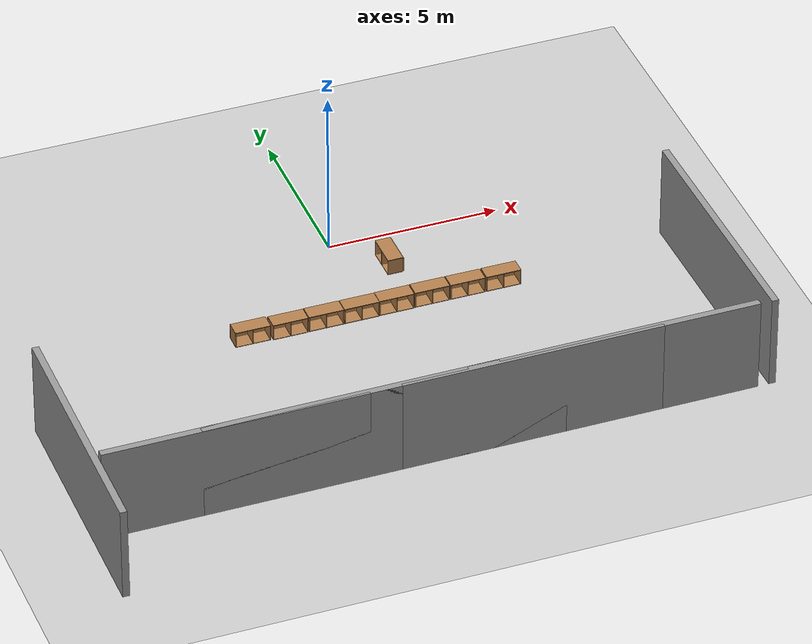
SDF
<sdf version="1.6">
 <world name="default">
  <model name="ground_plane">
   <static>1</static>
   <link name="link">
    <collision name="collision">
     <geometry><plane><normal>0 0 1</normal><size>100 100</size></plane></geometry>
     <surface><friction><ode><mu>100</mu><mu2>50</mu2></ode></friction></surface>
    </collision>
    <visual name="visual">
     <cast_shadows>0</cast_shadows>
     <geometry><plane><normal>0 0 1</normal><size>100 100</size></plane></geometry>
     <material>
      <script><uri>file://media/materials/scripts/gazebo.material</uri><name>Gazebo/Grey</name></script>
     </material>
    </visual>
   </link>
  </model>
  <model name="grey_wall2_clone_0">
   <pose>-6.25 -10 0 0 -0 0</pose>
   <static>1</static>
   <link name="grey_wall::link">
    <pose>0 0 1.4 0 -0 0</pose>
    <collision name="collision"><geometry><box><size>7.5 0.2 2.8</size></box></geometry></collision>
    <visual name="visual">
     <cast_shadows>0</cast_shadows>
     <geometry><box><size>7.5 0.2 2.8</size></box></geometry>
     <material>
      <script>
       <uri>model://grey_wall/materials/scripts</uri>
       <uri>model://grey_wall/materials/textures</uri>
       <name>vrc/grey_wall</name>
      </script>
     </material>
    </visual>
   </link>
  </model>
  <model name="grey_wall2_clone_1">
   <pose>-3.45 -10 0 0 -0 0</pose>
   <static>1</static>
   <link name="grey_wall::link">
    <pose>0 0 1.4 0 -0 0</pose>
    <collision name="collision"><geometry><box><size>7.5 0.2 2.8</size></box></geometry></collision>
    <visual name="visual">
     <cast_shadows>0</cast_shadows>
     <geometry><box><size>7.5 0.2 2.8</size></box></geometry>
     <material>
      <script>
       <uri>model://grey_wall/materials/scripts</uri>
       <uri>model://grey_wall/materials/textures</uri>
       <name>vrc/grey_wall</name>
      </script>
     </material>
    </visual>
   </link>
  </model>
  <model name="grey_wall2_clone_2">
   <pose>-0.65 -10 0 0 -0 0</pose>
   <static>1</static>
   <link name="grey_wall::link">
    <pose>0 0 1.4 0 -0 0</pose>
    <collision name="collision"><geometry><box><size>7.5 0.2 2.8</size></box></geometry></collision>
    <visual name="visual">
     <cast_shadows>0</cast_shadows>
     <geometry><box><size>7.5 0.2 2.8</size></box></geometry>
     <material>
      <script>
       <uri>model://grey_wall/materials/scripts</uri>
       <uri>model://grey_wall/materials/textures</uri>
       <name>vrc/grey_wall</name>
      </script>
     </material>
    </visual>
   </link>
  </model>
  <model name="grey_wall2_clone_3">
   <pose>2.15 -10 0 0 -0 0</pose>
   <static>1</static>
   <link name="grey_wall::link">
    <pose>0 0 1.4 0 -0 0</pose>
    <collision name="collision"><geometry><box><size>7.5 0.2 2.8</size></box></geometry></collision>
    <visual name="visual">
     <cast_shadows>0</cast_shadows>
     <geometry><box><size>7.5 0.2 2.8</size></box></geometry>
     <material>
      <script>
       <uri>model://grey_wall/materials/scripts</uri>
       <uri>model://grey_wall/materials/textures</uri>
       <name>vrc/grey_wall</name>
      </script>
     </material>
    </visual>
   </link>
  </model>
  <model name="grey_wall2_clone_4">
   <pose>4.95 -10 0 0 -0 0</pose>
   <static>1</static>
   <link name="grey_wall::link">
    <pose>0 0 1.4 0 -0 0</pose>
    <collision name="collision"><geometry><box><size>7.5 0.2 2.8</size></box></geometry></collision>
    <visual name="visual">
     <cast_shadows>0</cast_shadows>
     <geometry><box><size>7.5 0.2 2.8</size></box></geometry>
     <material>
      <script>
       <uri>model://grey_wall/materials/scripts</uri>
       <uri>model://grey_wall/materials/textures</uri>
       <name>vrc/grey_wall</name>
      </script>
     </material>
    </visual>
   </link>
  </model>
  <model name="grey_wall">
   <static>1</static>
   <link name="link">
    <pose>0 0 1.4 0 -0 0</pose>
    <collision name="collision"><geometry><box><size>7.5 0.2 2.8</size></box></geometry></collision>
    <visual name="visual">
     <cast_shadows>0</cast_shadows>
     <geometry><box><size>7.5 0.2 2.8</size></box></geometry>
     <material>
      <script>
       <uri>model://grey_wall/materials/scripts</uri>
       <uri>model://grey_wall/materials/textures</uri>
       <name>vrc/grey_wall</name>
      </script>
     </material>
    </visual>
   </link>
   <pose>9.06574 -6.3529 0 0 -0 1.58406</pose>
  </model>
  <model name="grey_wall_clone_clone_clone_clone_0">
   <static>1</static>
   <link name="link">
    <pose>0 0 1.4 0 -0 0</pose>
    <collision name="collision"><geometry><box><size>7.5 0.2 2.8</size></box></geometry></collision>
    <visual name="visual">
     <cast_shadows>0</cast_shadows>
     <geometry><box><size>7.5 0.2 2.8</size></box></geometry>
     <material>
      <script>
       <uri>model://grey_wall/materials/scripts</uri>
       <uri>model://grey_wall/materials/textures</uri>
       <name>vrc/grey_wall</name>
      </script>
     </material>
    </visual>
   </link>
   <pose>-10.1848 -8.80836 0 0 -0 1.5647</pose>
  </model>
  <model name="cabinet_clone_3">
   <static>1</static>
   <link name="cabinet_bottom_plate">
    <inertial>
     <pose>0 0 -1 0 -0 0</pose>
     <inertia><ixx>2.05</ixx><ixy>0</ixy><ixz>0</ixz><iyy>2.05</iyy><iyz>0</iyz><izz>2.05</izz></inertia>
     <mass>25</mass>
    </inertial>
    <collision name="cabinet_bottom_plate_geom">
     <pose>0 0 0.01 0 -0 0</pose>
     <geometry><box><size>0.45 0.45 0.02</size></box></geometry>
    </collision>
    <visual name="cabinet_bottom_plate_geom_visual">
     <pose>0 0 0.01 0 -0 0</pose>
     <geometry><box><size>0.45 0.45 0.02</size></box></geometry>
     <material>
      <script><uri>file://media/materials/scripts/gazebo.material</uri><name>Gazebo/Wood</name></script>
     </material>
    </visual>
    <collision name="cabinet_bottom_plate_geom_cabinet_back_plate">
     <pose>0.235 0 0.51 0 -0 0</pose>
     <geometry><box><size>0.02 0.45 1.02</size></box></geometry>
    </collision>
    <visual name="cabinet_bottom_plate_geom_cabinet_back_plate_visual">
     <pose>0.235 0 0.51 0 -0 0</pose>
     <geometry><box><size>0.02 0.45 1.02</size></box></geometry>
     <material>
      <script><uri>file://media/materials/scripts/gazebo.material</uri><name>Gazebo/Wood</name></script>
     </material>
    </visual>
    <collision name="cabinet_bottom_plate_geom_cabinet_left_plate">
     <pose>0 0.235 0.51 0 -0 0</pose>
     <geometry><box><size>0.45 0.02 1.02</size></box></geometry>
    </collision>
    <visual name="cabinet_bottom_plate_geom_cabinet_left_plate_visual">
     <pose>0 0.235 0.51 0 -0 0</pose>
     <geometry><box><size>0.45 0.02 1.02</size></box></geometry>
     <material>
      <script><uri>file://media/materials/scripts/gazebo.material</uri><name>Gazebo/Wood</name></script>
     </material>
    </visual>
    <collision name="cabinet_bottom_plate_geom_cabinet_middle_plate">
     <pose>0 0 0.51 0 -0 0</pose>
     <geometry><box><size>0.45 0.45 0.02</size></box></geometry>
    </collision>
    <visual name="cabinet_bottom_plate_geom_cabinet_middle_plate_visual">
     <pose>0 0 0.51 0 -0 0</pose>
     <geometry><box><size>0.45 0.45 0.02</size></box></geometry>
     <material>
      <script><uri>file://media/materials/scripts/gazebo.material</uri><name>Gazebo/Wood</name></script>
     </material>
    </visual>
    <collision name="cabinet_bottom_plate_geom_cabinet_right_plate">
     <pose>0 -0.235 0.51 0 -0 0</pose>
     <geometry><box><size>0.45 0.02 1.02</size></box></geometry>
    </collision>
    <visual name="cabinet_bottom_plate_geom_cabinet_right_plate_visual">
     <pose>0 -0.235 0.51 0 -0 0</pose>
     <geometry><box><size>0.45 0.02 1.02</size></box></geometry>
     <material>
      <script><uri>file://media/materials/scripts/gazebo.material</uri><name>Gazebo/Wood</name></script>
     </material>
    </visual>
    <collision name="cabinet_bottom_plate_geom_cabinet_top_plate">
     <pose>0 0 1.01 0 -0 0</pose>
     <geometry><box><size>0.45 0.45 0.02</size></box></geometry>
    </collision>
    <visual name="cabinet_bottom_plate_geom_cabinet_top_plate_visual">
     <pose>0 0 1.01 0 -0 0</pose>
     <geometry><box><size>0.45 0.45 0.02</size></box></geometry>
     <material>
      <script><uri>file://media/materials/scripts/gazebo.material</uri><name>Gazebo/Wood</name></script>
     </material>
    </visual>
   </link>
   <pose>1.30027 -1.829 0.264462 -1.57506 0 0</pose>
  </model>
  <model name="cabinet_clone_10">
   <static>1</static>
   <link name="cabinet_bottom_plate">
    <inertial>
     <pose>0 0 -1 0 -0 0</pose>
     <inertia><ixx>2.05</ixx><ixy>0</ixy><ixz>0</ixz><iyy>2.05</iyy><iyz>0</iyz><izz>2.05</izz></inertia>
     <mass>25</mass>
    </inertial>
    <collision name="cabinet_bottom_plate_geom">
     <pose>0 0 0.01 0 -0 0</pose>
     <geometry><box><size>0.45 0.45 0.02</size></box></geometry>
    </collision>
    <visual name="cabinet_bottom_plate_geom_visual">
     <pose>0 0 0.01 0 -0 0</pose>
     <geometry><box><size>0.45 0.45 0.02</size></box></geometry>
     <material>
      <script><uri>file://media/materials/scripts/gazebo.material</uri><name>Gazebo/Wood</name></script>
     </material>
    </visual>
    <collision name="cabinet_bottom_plate_geom_cabinet_back_plate">
     <pose>0.235 0 0.51 0 -0 0</pose>
     <geometry><box><size>0.02 0.45 1.02</size></box></geometry>
    </collision>
    <visual name="cabinet_bottom_plate_geom_cabinet_back_plate_visual">
     <pose>0.235 0 0.51 0 -0 0</pose>
     <geometry><box><size>0.02 0.45 1.02</size></box></geometry>
     <material>
      <script><uri>file://media/materials/scripts/gazebo.material</uri><name>Gazebo/Wood</name></script>
     </material>
    </visual>
    <collision name="cabinet_bottom_plate_geom_cabinet_left_plate">
     <pose>0 0.235 0.51 0 -0 0</pose>
     <geometry><box><size>0.45 0.02 1.02</size></box></geometry>
    </collision>
    <visual name="cabinet_bottom_plate_geom_cabinet_left_plate_visual">
     <pose>0 0.235 0.51 0 -0 0</pose>
     <geometry><box><size>0.45 0.02 1.02</size></box></geometry>
     <material>
      <script><uri>file://media/materials/scripts/gazebo.material</uri><name>Gazebo/Wood</name></script>
     </material>
    </visual>
    <collision name="cabinet_bottom_plate_geom_cabinet_middle_plate">
     <pose>0 0 0.51 0 -0 0</pose>
     <geometry><box><size>0.45 0.45 0.02</size></box></geometry>
    </collision>
    <visual name="cabinet_bottom_plate_geom_cabinet_middle_plate_visual">
     <pose>0 0 0.51 0 -0 0</pose>
     <geometry><box><size>0.45 0.45 0.02</size></box></geometry>
     <material>
      <script><uri>file://media/materials/scripts/gazebo.material</uri><name>Gazebo/Wood</name></script>
     </material>
    </visual>
    <collision name="cabinet_bottom_plate_geom_cabinet_right_plate">
     <pose>0 -0.235 0.51 0 -0 0</pose>
     <geometry><box><size>0.45 0.02 1.02</size></box></geometry>
    </collision>
    <visual name="cabinet_bottom_plate_geom_cabinet_right_plate_visual">
     <pose>0 -0.235 0.51 0 -0 0</pose>
     <geometry><box><size>0.45 0.02 1.02</size></box></geometry>
     <material>
      <script><uri>file://media/materials/scripts/gazebo.material</uri><name>Gazebo/Wood</name></script>
     </material>
    </visual>
    <collision name="cabinet_bottom_plate_geom_cabinet_top_plate">
     <pose>0 0 1.01 0 -0 0</pose>
     <geometry><box><size>0.45 0.45 0.02</size></box></geometry>
    </collision>
    <visual name="cabinet_bottom_plate_geom_cabinet_top_plate_visual">
     <pose>0 0 1.01 0 -0 0</pose>
     <geometry><box><size>0.45 0.45 0.02</size></box></geometry>
     <material>
      <script><uri>file://media/materials/scripts/gazebo.material</uri><name>Gazebo/Wood</name></script>
     </material>
    </visual>
   </link>
   <pose>-2.97356 -3.27603 0.264462 -1.57082 0.004264 1.56552</pose>
  </model>
  <model name="cabinet_clone_10_clone">
   <static>1</static>
   <link name="cabinet_bottom_plate">
    <inertial>
     <pose>0 0 -1 0 -0 0</pose>
     <inertia><ixx>2.05</ixx><ixy>0</ixy><ixz>0</ixz><iyy>2.05</iyy><iyz>0</iyz><izz>2.05</izz></inertia>
     <mass>25</mass>
    </inertial>
    <collision name="cabinet_bottom_plate_geom">
     <pose>0 0 0.01 0 -0 0</pose>
     <geometry><box><size>0.45 0.45 0.02</size></box></geometry>
    </collision>
    <visual name="cabinet_bottom_plate_geom_visual">
     <pose>0 0 0.01 0 -0 0</pose>
     <geometry><box><size>0.45 0.45 0.02</size></box></geometry>
     <material>
      <script><uri>file://media/materials/scripts/gazebo.material</uri><name>Gazebo/Wood</name></script>
     </material>
    </visual>
    <collision name="cabinet_bottom_plate_geom_cabinet_back_plate">
     <pose>0.235 0 0.51 0 -0 0</pose>
     <geometry><box><size>0.02 0.45 1.02</size></box></geometry>
    </collision>
    <visual name="cabinet_bottom_plate_geom_cabinet_back_plate_visual">
     <pose>0.235 0 0.51 0 -0 0</pose>
     <geometry><box><size>0.02 0.45 1.02</size></box></geometry>
     <material>
      <script><uri>file://media/materials/scripts/gazebo.material</uri><name>Gazebo/Wood</name></script>
     </material>
    </visual>
    <collision name="cabinet_bottom_plate_geom_cabinet_left_plate">
     <pose>0 0.235 0.51 0 -0 0</pose>
     <geometry><box><size>0.45 0.02 1.02</size></box></geometry>
    </collision>
    <visual name="cabinet_bottom_plate_geom_cabinet_left_plate_visual">
     <pose>0 0.235 0.51 0 -0 0</pose>
     <geometry><box><size>0.45 0.02 1.02</size></box></geometry>
     <material>
      <script><uri>file://media/materials/scripts/gazebo.material</uri><name>Gazebo/Wood</name></script>
     </material>
    </visual>
    <collision name="cabinet_bottom_plate_geom_cabinet_middle_plate">
     <pose>0 0 0.51 0 -0 0</pose>
     <geometry><box><size>0.45 0.45 0.02</size></box></geometry>
    </collision>
    <visual name="cabinet_bottom_plate_geom_cabinet_middle_plate_visual">
     <pose>0 0 0.51 0 -0 0</pose>
     <geometry><box><size>0.45 0.45 0.02</size></box></geometry>
     <material>
      <script><uri>file://media/materials/scripts/gazebo.material</uri><name>Gazebo/Wood</name></script>
     </material>
    </visual>
    <collision name="cabinet_bottom_plate_geom_cabinet_right_plate">
     <pose>0 -0.235 0.51 0 -0 0</pose>
     <geometry><box><size>0.45 0.02 1.02</size></box></geometry>
    </collision>
    <visual name="cabinet_bottom_plate_geom_cabinet_right_plate_visual">
     <pose>0 -0.235 0.51 0 -0 0</pose>
     <geometry><box><size>0.45 0.02 1.02</size></box></geometry>
     <material>
      <script><uri>file://media/materials/scripts/gazebo.material</uri><name>Gazebo/Wood</name></script>
     </material>
    </visual>
    <collision name="cabinet_bottom_plate_geom_cabinet_top_plate">
     <pose>0 0 1.01 0 -0 0</pose>
     <geometry><box><size>0.45 0.45 0.02</size></box></geometry>
    </collision>
    <visual name="cabinet_bottom_plate_geom_cabinet_top_plate_visual">
     <pose>0 0 1.01 0 -0 0</pose>
     <geometry><box><size>0.45 0.45 0.02</size></box></geometry>
     <material>
      <script><uri>file://media/materials/scripts/gazebo.material</uri><name>Gazebo/Wood</name></script>
     </material>
    </visual>
   </link>
   <pose>-1.89151 -3.31088 0.264462 -1.57082 0.004264 1.56552</pose>
  </model>
  <model name="cabinet_clone_10_clone_0">
   <static>1</static>
   <link name="cabinet_bottom_plate">
    <inertial>
     <pose>0 0 -1 0 -0 0</pose>
     <inertia><ixx>2.05</ixx><ixy>0</ixy><ixz>0</ixz><iyy>2.05</iyy><iyz>0</iyz><izz>2.05</izz></inertia>
     <mass>25</mass>
    </inertial>
    <collision name="cabinet_bottom_plate_geom">
     <pose>0 0 0.01 0 -0 0</pose>
     <geometry><box><size>0.45 0.45 0.02</size></box></geometry>
    </collision>
    <visual name="cabinet_bottom_plate_geom_visual">
     <pose>0 0 0.01 0 -0 0</pose>
     <geometry><box><size>0.45 0.45 0.02</size></box></geometry>
     <material>
      <script><uri>file://media/materials/scripts/gazebo.material</uri><name>Gazebo/Wood</name></script>
     </material>
    </visual>
    <collision name="cabinet_bottom_plate_geom_cabinet_back_plate">
     <pose>0.235 0 0.51 0 -0 0</pose>
     <geometry><box><size>0.02 0.45 1.02</size></box></geometry>
    </collision>
    <visual name="cabinet_bottom_plate_geom_cabinet_back_plate_visual">
     <pose>0.235 0 0.51 0 -0 0</pose>
     <geometry><box><size>0.02 0.45 1.02</size></box></geometry>
     <material>
      <script><uri>file://media/materials/scripts/gazebo.material</uri><name>Gazebo/Wood</name></script>
     </material>
    </visual>
    <collision name="cabinet_bottom_plate_geom_cabinet_left_plate">
     <pose>0 0.235 0.51 0 -0 0</pose>
     <geometry><box><size>0.45 0.02 1.02</size></box></geometry>
    </collision>
    <visual name="cabinet_bottom_plate_geom_cabinet_left_plate_visual">
     <pose>0 0.235 0.51 0 -0 0</pose>
     <geometry><box><size>0.45 0.02 1.02</size></box></geometry>
     <material>
      <script><uri>file://media/materials/scripts/gazebo.material</uri><name>Gazebo/Wood</name></script>
     </material>
    </visual>
    <collision name="cabinet_bottom_plate_geom_cabinet_middle_plate">
     <pose>0 0 0.51 0 -0 0</pose>
     <geometry><box><size>0.45 0.45 0.02</size></box></geometry>
    </collision>
    <visual name="cabinet_bottom_plate_geom_cabinet_middle_plate_visual">
     <pose>0 0 0.51 0 -0 0</pose>
     <geometry><box><size>0.45 0.45 0.02</size></box></geometry>
     <material>
      <script><uri>file://media/materials/scripts/gazebo.material</uri><name>Gazebo/Wood</name></script>
     </material>
    </visual>
    <collision name="cabinet_bottom_plate_geom_cabinet_right_plate">
     <pose>0 -0.235 0.51 0 -0 0</pose>
     <geometry><box><size>0.45 0.02 1.02</size></box></geometry>
    </collision>
    <visual name="cabinet_bottom_plate_geom_cabinet_right_plate_visual">
     <pose>0 -0.235 0.51 0 -0 0</pose>
     <geometry><box><size>0.45 0.02 1.02</size></box></geometry>
     <material>
      <script><uri>file://media/materials/scripts/gazebo.material</uri><name>Gazebo/Wood</name></script>
     </material>
    </visual>
    <collision name="cabinet_bottom_plate_geom_cabinet_top_plate">
     <pose>0 0 1.01 0 -0 0</pose>
     <geometry><box><size>0.45 0.45 0.02</size></box></geometry>
    </collision>
    <visual name="cabinet_bottom_plate_geom_cabinet_top_plate_visual">
     <pose>0 0 1.01 0 -0 0</pose>
     <geometry><box><size>0.45 0.45 0.02</size></box></geometry>
     <material>
      <script><uri>file://media/materials/scripts/gazebo.material</uri><name>Gazebo/Wood</name></script>
     </material>
    </visual>
   </link>
   <pose>-0.844694 -3.30562 0.264462 -1.57082 0.004264 1.56552</pose>
  </model>
  <model name="cabinet_clone_10_clone_1">
   <static>1</static>
   <link name="cabinet_bottom_plate">
    <inertial>
     <pose>0 0 -1 0 -0 0</pose>
     <inertia><ixx>2.05</ixx><ixy>0</ixy><ixz>0</ixz><iyy>2.05</iyy><iyz>0</iyz><izz>2.05</izz></inertia>
     <mass>25</mass>
    </inertial>
    <collision name="cabinet_bottom_plate_geom">
     <pose>0 0 0.01 0 -0 0</pose>
     <geometry><box><size>0.45 0.45 0.02</size></box></geometry>
    </collision>
    <visual name="cabinet_bottom_plate_geom_visual">
     <pose>0 0 0.01 0 -0 0</pose>
     <geometry><box><size>0.45 0.45 0.02</size></box></geometry>
     <material>
      <script><uri>file://media/materials/scripts/gazebo.material</uri><name>Gazebo/Wood</name></script>
     </material>
    </visual>
    <collision name="cabinet_bottom_plate_geom_cabinet_back_plate">
     <pose>0.235 0 0.51 0 -0 0</pose>
     <geometry><box><size>0.02 0.45 1.02</size></box></geometry>
    </collision>
    <visual name="cabinet_bottom_plate_geom_cabinet_back_plate_visual">
     <pose>0.235 0 0.51 0 -0 0</pose>
     <geometry><box><size>0.02 0.45 1.02</size></box></geometry>
     <material>
      <script><uri>file://media/materials/scripts/gazebo.material</uri><name>Gazebo/Wood</name></script>
     </material>
    </visual>
    <collision name="cabinet_bottom_plate_geom_cabinet_left_plate">
     <pose>0 0.235 0.51 0 -0 0</pose>
     <geometry><box><size>0.45 0.02 1.02</size></box></geometry>
    </collision>
    <visual name="cabinet_bottom_plate_geom_cabinet_left_plate_visual">
     <pose>0 0.235 0.51 0 -0 0</pose>
     <geometry><box><size>0.45 0.02 1.02</size></box></geometry>
     <material>
      <script><uri>file://media/materials/scripts/gazebo.material</uri><name>Gazebo/Wood</name></script>
     </material>
    </visual>
    <collision name="cabinet_bottom_plate_geom_cabinet_middle_plate">
     <pose>0 0 0.51 0 -0 0</pose>
     <geometry><box><size>0.45 0.45 0.02</size></box></geometry>
    </collision>
    <visual name="cabinet_bottom_plate_geom_cabinet_middle_plate_visual">
     <pose>0 0 0.51 0 -0 0</pose>
     <geometry><box><size>0.45 0.45 0.02</size></box></geometry>
     <material>
      <script><uri>file://media/materials/scripts/gazebo.material</uri><name>Gazebo/Wood</name></script>
     </material>
    </visual>
    <collision name="cabinet_bottom_plate_geom_cabinet_right_plate">
     <pose>0 -0.235 0.51 0 -0 0</pose>
     <geometry><box><size>0.45 0.02 1.02</size></box></geometry>
    </collision>
    <visual name="cabinet_bottom_plate_geom_cabinet_right_plate_visual">
     <pose>0 -0.235 0.51 0 -0 0</pose>
     <geometry><box><size>0.45 0.02 1.02</size></box></geometry>
     <material>
      <script><uri>file://media/materials/scripts/gazebo.material</uri><name>Gazebo/Wood</name></script>
     </material>
    </visual>
    <collision name="cabinet_bottom_plate_geom_cabinet_top_plate">
     <pose>0 0 1.01 0 -0 0</pose>
     <geometry><box><size>0.45 0.45 0.02</size></box></geometry>
    </collision>
    <visual name="cabinet_bottom_plate_geom_cabinet_top_plate_visual">
     <pose>0 0 1.01 0 -0 0</pose>
     <geometry><box><size>0.45 0.45 0.02</size></box></geometry>
     <material>
      <script><uri>file://media/materials/scripts/gazebo.material</uri><name>Gazebo/Wood</name></script>
     </material>
    </visual>
   </link>
   <pose>0.191009 -3.30897 0.264462 -1.57082 0.004264 1.56552</pose>
  </model>
  <model name="cabinet_clone_10_clone_2">
   <static>1</static>
   <link name="cabinet_bottom_plate">
    <inertial>
     <pose>0 0 -1 0 -0 0</pose>
     <inertia><ixx>2.05</ixx><ixy>0</ixy><ixz>0</ixz><iyy>2.05</iyy><iyz>0</iyz><izz>2.05</izz></inertia>
     <mass>25</mass>
    </inertial>
    <collision name="cabinet_bottom_plate_geom">
     <pose>0 0 0.01 0 -0 0</pose>
     <geometry><box><size>0.45 0.45 0.02</size></box></geometry>
    </collision>
    <visual name="cabinet_bottom_plate_geom_visual">
     <pose>0 0 0.01 0 -0 0</pose>
     <geometry><box><size>0.45 0.45 0.02</size></box></geometry>
     <material>
      <script><uri>file://media/materials/scripts/gazebo.material</uri><name>Gazebo/Wood</name></script>
     </material>
    </visual>
    <collision name="cabinet_bottom_plate_geom_cabinet_back_plate">
     <pose>0.235 0 0.51 0 -0 0</pose>
     <geometry><box><size>0.02 0.45 1.02</size></box></geometry>
    </collision>
    <visual name="cabinet_bottom_plate_geom_cabinet_back_plate_visual">
     <pose>0.235 0 0.51 0 -0 0</pose>
     <geometry><box><size>0.02 0.45 1.02</size></box></geometry>
     <material>
      <script><uri>file://media/materials/scripts/gazebo.material</uri><name>Gazebo/Wood</name></script>
     </material>
    </visual>
    <collision name="cabinet_bottom_plate_geom_cabinet_left_plate">
     <pose>0 0.235 0.51 0 -0 0</pose>
     <geometry><box><size>0.45 0.02 1.02</size></box></geometry>
    </collision>
    <visual name="cabinet_bottom_plate_geom_cabinet_left_plate_visual">
     <pose>0 0.235 0.51 0 -0 0</pose>
     <geometry><box><size>0.45 0.02 1.02</size></box></geometry>
     <material>
      <script><uri>file://media/materials/scripts/gazebo.material</uri><name>Gazebo/Wood</name></script>
     </material>
    </visual>
    <collision name="cabinet_bottom_plate_geom_cabinet_middle_plate">
     <pose>0 0 0.51 0 -0 0</pose>
     <geometry><box><size>0.45 0.45 0.02</size></box></geometry>
    </collision>
    <visual name="cabinet_bottom_plate_geom_cabinet_middle_plate_visual">
     <pose>0 0 0.51 0 -0 0</pose>
     <geometry><box><size>0.45 0.45 0.02</size></box></geometry>
     <material>
      <script><uri>file://media/materials/scripts/gazebo.material</uri><name>Gazebo/Wood</name></script>
     </material>
    </visual>
    <collision name="cabinet_bottom_plate_geom_cabinet_right_plate">
     <pose>0 -0.235 0.51 0 -0 0</pose>
     <geometry><box><size>0.45 0.02 1.02</size></box></geometry>
    </collision>
    <visual name="cabinet_bottom_plate_geom_cabinet_right_plate_visual">
     <pose>0 -0.235 0.51 0 -0 0</pose>
     <geometry><box><size>0.45 0.02 1.02</size></box></geometry>
     <material>
      <script><uri>file://media/materials/scripts/gazebo.material</uri><name>Gazebo/Wood</name></script>
     </material>
    </visual>
    <collision name="cabinet_bottom_plate_geom_cabinet_top_plate">
     <pose>0 0 1.01 0 -0 0</pose>
     <geometry><box><size>0.45 0.45 0.02</size></box></geometry>
    </collision>
    <visual name="cabinet_bottom_plate_geom_cabinet_top_plate_visual">
     <pose>0 0 1.01 0 -0 0</pose>
     <geometry><box><size>0.45 0.45 0.02</size></box></geometry>
     <material>
      <script><uri>file://media/materials/scripts/gazebo.material</uri><name>Gazebo/Wood</name></script>
     </material>
    </visual>
   </link>
   <pose>1.21815 -3.30095 0.264462 -1.57082 0.004264 1.56552</pose>
  </model>
  <model name="cabinet_clone_10_clone_3">
   <static>1</static>
   <link name="cabinet_bottom_plate">
    <inertial>
     <pose>0 0 -1 0 -0 0</pose>
     <inertia><ixx>2.05</ixx><ixy>0</ixy><ixz>0</ixz><iyy>2.05</iyy><iyz>0</iyz><izz>2.05</izz></inertia>
     <mass>25</mass>
    </inertial>
    <collision name="cabinet_bottom_plate_geom">
     <pose>0 0 0.01 0 -0 0</pose>
     <geometry><box><size>0.45 0.45 0.02</size></box></geometry>
    </collision>
    <visual name="cabinet_bottom_plate_geom_visual">
     <pose>0 0 0.01 0 -0 0</pose>
     <geometry><box><size>0.45 0.45 0.02</size></box></geometry>
     <material>
      <script><uri>file://media/materials/scripts/gazebo.material</uri><name>Gazebo/Wood</name></script>
     </material>
    </visual>
    <collision name="cabinet_bottom_plate_geom_cabinet_back_plate">
     <pose>0.235 0 0.51 0 -0 0</pose>
     <geometry><box><size>0.02 0.45 1.02</size></box></geometry>
    </collision>
    <visual name="cabinet_bottom_plate_geom_cabinet_back_plate_visual">
     <pose>0.235 0 0.51 0 -0 0</pose>
     <geometry><box><size>0.02 0.45 1.02</size></box></geometry>
     <material>
      <script><uri>file://media/materials/scripts/gazebo.material</uri><name>Gazebo/Wood</name></script>
     </material>
    </visual>
    <collision name="cabinet_bottom_plate_geom_cabinet_left_plate">
     <pose>0 0.235 0.51 0 -0 0</pose>
     <geometry><box><size>0.45 0.02 1.02</size></box></geometry>
    </collision>
    <visual name="cabinet_bottom_plate_geom_cabinet_left_plate_visual">
     <pose>0 0.235 0.51 0 -0 0</pose>
     <geometry><box><size>0.45 0.02 1.02</size></box></geometry>
     <material>
      <script><uri>file://media/materials/scripts/gazebo.material</uri><name>Gazebo/Wood</name></script>
     </material>
    </visual>
    <collision name="cabinet_bottom_plate_geom_cabinet_middle_plate">
     <pose>0 0 0.51 0 -0 0</pose>
     <geometry><box><size>0.45 0.45 0.02</size></box></geometry>
    </collision>
    <visual name="cabinet_bottom_plate_geom_cabinet_middle_plate_visual">
     <pose>0 0 0.51 0 -0 0</pose>
     <geometry><box><size>0.45 0.45 0.02</size></box></geometry>
     <material>
      <script><uri>file://media/materials/scripts/gazebo.material</uri><name>Gazebo/Wood</name></script>
     </material>
    </visual>
    <collision name="cabinet_bottom_plate_geom_cabinet_right_plate">
     <pose>0 -0.235 0.51 0 -0 0</pose>
     <geometry><box><size>0.45 0.02 1.02</size></box></geometry>
    </collision>
    <visual name="cabinet_bottom_plate_geom_cabinet_right_plate_visual">
     <pose>0 -0.235 0.51 0 -0 0</pose>
     <geometry><box><size>0.45 0.02 1.02</size></box></geometry>
     <material>
      <script><uri>file://media/materials/scripts/gazebo.material</uri><name>Gazebo/Wood</name></script>
     </material>
    </visual>
    <collision name="cabinet_bottom_plate_geom_cabinet_top_plate">
     <pose>0 0 1.01 0 -0 0</pose>
     <geometry><box><size>0.45 0.45 0.02</size></box></geometry>
    </collision>
    <visual name="cabinet_bottom_plate_geom_cabinet_top_plate_visual">
     <pose>0 0 1.01 0 -0 0</pose>
     <geometry><box><size>0.45 0.45 0.02</size></box></geometry>
     <material>
      <script><uri>file://media/materials/scripts/gazebo.material</uri><name>Gazebo/Wood</name></script>
     </material>
    </visual>
   </link>
   <pose>2.26981 -3.29054 0.264462 -1.57082 0.004264 1.56552</pose>
  </model>
  <model name="cabinet_clone_10_clone_4">
   <static>1</static>
   <link name="cabinet_bottom_plate">
    <inertial>
     <pose>0 0 -1 0 -0 0</pose>
     <inertia><ixx>2.05</ixx><ixy>0</ixy><ixz>0</ixz><iyy>2.05</iyy><iyz>0</iyz><izz>2.05</izz></inertia>
     <mass>25</mass>
    </inertial>
    <collision name="cabinet_bottom_plate_geom">
     <pose>0 0 0.01 0 -0 0</pose>
     <geometry><box><size>0.45 0.45 0.02</size></box></geometry>
    </collision>
    <visual name="cabinet_bottom_plate_geom_visual">
     <pose>0 0 0.01 0 -0 0</pose>
     <geometry><box><size>0.45 0.45 0.02</size></box></geometry>
     <material>
      <script><uri>file://media/materials/scripts/gazebo.material</uri><name>Gazebo/Wood</name></script>
     </material>
    </visual>
    <collision name="cabinet_bottom_plate_geom_cabinet_back_plate">
     <pose>0.235 0 0.51 0 -0 0</pose>
     <geometry><box><size>0.02 0.45 1.02</size></box></geometry>
    </collision>
    <visual name="cabinet_bottom_plate_geom_cabinet_back_plate_visual">
     <pose>0.235 0 0.51 0 -0 0</pose>
     <geometry><box><size>0.02 0.45 1.02</size></box></geometry>
     <material>
      <script><uri>file://media/materials/scripts/gazebo.material</uri><name>Gazebo/Wood</name></script>
     </material>
    </visual>
    <collision name="cabinet_bottom_plate_geom_cabinet_left_plate">
     <pose>0 0.235 0.51 0 -0 0</pose>
     <geometry><box><size>0.45 0.02 1.02</size></box></geometry>
    </collision>
    <visual name="cabinet_bottom_plate_geom_cabinet_left_plate_visual">
     <pose>0 0.235 0.51 0 -0 0</pose>
     <geometry><box><size>0.45 0.02 1.02</size></box></geometry>
     <material>
      <script><uri>file://media/materials/scripts/gazebo.material</uri><name>Gazebo/Wood</name></script>
     </material>
    </visual>
    <collision name="cabinet_bottom_plate_geom_cabinet_middle_plate">
     <pose>0 0 0.51 0 -0 0</pose>
     <geometry><box><size>0.45 0.45 0.02</size></box></geometry>
    </collision>
    <visual name="cabinet_bottom_plate_geom_cabinet_middle_plate_visual">
     <pose>0 0 0.51 0 -0 0</pose>
     <geometry><box><size>0.45 0.45 0.02</size></box></geometry>
     <material>
      <script><uri>file://media/materials/scripts/gazebo.material</uri><name>Gazebo/Wood</name></script>
     </material>
    </visual>
    <collision name="cabinet_bottom_plate_geom_cabinet_right_plate">
     <pose>0 -0.235 0.51 0 -0 0</pose>
     <geometry><box><size>0.45 0.02 1.02</size></box></geometry>
    </collision>
    <visual name="cabinet_bottom_plate_geom_cabinet_right_plate_visual">
     <pose>0 -0.235 0.51 0 -0 0</pose>
     <geometry><box><size>0.45 0.02 1.02</size></box></geometry>
     <material>
      <script><uri>file://media/materials/scripts/gazebo.material</uri><name>Gazebo/Wood</name></script>
     </material>
    </visual>
    <collision name="cabinet_bottom_plate_geom_cabinet_top_plate">
     <pose>0 0 1.01 0 -0 0</pose>
     <geometry><box><size>0.45 0.45 0.02</size></box></geometry>
    </collision>
    <visual name="cabinet_bottom_plate_geom_cabinet_top_plate_visual">
     <pose>0 0 1.01 0 -0 0</pose>
     <geometry><box><size>0.45 0.45 0.02</size></box></geometry>
     <material>
      <script><uri>file://media/materials/scripts/gazebo.material</uri><name>Gazebo/Wood</name></script>
     </material>
    </visual>
   </link>
   <pose>3.3166 -3.29607 0.264462 -1.57082 0.004264 1.56552</pose>
  </model>
  <model name="cabinet_clone_10_clone_5">
   <static>1</static>
   <link name="cabinet_bottom_plate">
    <inertial>
     <pose>0 0 -1 0 -0 0</pose>
     <inertia><ixx>2.05</ixx><ixy>0</ixy><ixz>0</ixz><iyy>2.05</iyy><iyz>0</iyz><izz>2.05</izz></inertia>
     <mass>25</mass>
    </inertial>
    <collision name="cabinet_bottom_plate_geom">
     <pose>0 0 0.01 0 -0 0</pose>
     <geometry><box><size>0.45 0.45 0.02</size></box></geometry>
    </collision>
    <visual name="cabinet_bottom_plate_geom_visual">
     <pose>0 0 0.01 0 -0 0</pose>
     <geometry><box><size>0.45 0.45 0.02</size></box></geometry>
     <material>
      <script><uri>file://media/materials/scripts/gazebo.material</uri><name>Gazebo/Wood</name></script>
     </material>
    </visual>
    <collision name="cabinet_bottom_plate_geom_cabinet_back_plate">
     <pose>0.235 0 0.51 0 -0 0</pose>
     <geometry><box><size>0.02 0.45 1.02</size></box></geometry>
    </collision>
    <visual name="cabinet_bottom_plate_geom_cabinet_back_plate_visual">
     <pose>0.235 0 0.51 0 -0 0</pose>
     <geometry><box><size>0.02 0.45 1.02</size></box></geometry>
     <material>
      <script><uri>file://media/materials/scripts/gazebo.material</uri><name>Gazebo/Wood</name></script>
     </material>
    </visual>
    <collision name="cabinet_bottom_plate_geom_cabinet_left_plate">
     <pose>0 0.235 0.51 0 -0 0</pose>
     <geometry><box><size>0.45 0.02 1.02</size></box></geometry>
    </collision>
    <visual name="cabinet_bottom_plate_geom_cabinet_left_plate_visual">
     <pose>0 0.235 0.51 0 -0 0</pose>
     <geometry><box><size>0.45 0.02 1.02</size></box></geometry>
     <material>
      <script><uri>file://media/materials/scripts/gazebo.material</uri><name>Gazebo/Wood</name></script>
     </material>
    </visual>
    <collision name="cabinet_bottom_plate_geom_cabinet_middle_plate">
     <pose>0 0 0.51 0 -0 0</pose>
     <geometry><box><size>0.45 0.45 0.02</size></box></geometry>
    </collision>
    <visual name="cabinet_bottom_plate_geom_cabinet_middle_plate_visual">
     <pose>0 0 0.51 0 -0 0</pose>
     <geometry><box><size>0.45 0.45 0.02</size></box></geometry>
     <material>
      <script><uri>file://media/materials/scripts/gazebo.material</uri><name>Gazebo/Wood</name></script>
     </material>
    </visual>
    <collision name="cabinet_bottom_plate_geom_cabinet_right_plate">
     <pose>0 -0.235 0.51 0 -0 0</pose>
     <geometry><box><size>0.45 0.02 1.02</size></box></geometry>
    </collision>
    <visual name="cabinet_bottom_plate_geom_cabinet_right_plate_visual">
     <pose>0 -0.235 0.51 0 -0 0</pose>
     <geometry><box><size>0.45 0.02 1.02</size></box></geometry>
     <material>
      <script><uri>file://media/materials/scripts/gazebo.material</uri><name>Gazebo/Wood</name></script>
     </material>
    </visual>
    <collision name="cabinet_bottom_plate_geom_cabinet_top_plate">
     <pose>0 0 1.01 0 -0 0</pose>
     <geometry><box><size>0.45 0.45 0.02</size></box></geometry>
    </collision>
    <visual name="cabinet_bottom_plate_geom_cabinet_top_plate_visual">
     <pose>0 0 1.01 0 -0 0</pose>
     <geometry><box><size>0.45 0.45 0.02</size></box></geometry>
     <material>
      <script><uri>file://media/materials/scripts/gazebo.material</uri><name>Gazebo/Wood</name></script>
     </material>
    </visual>
   </link>
   <pose>4.37997 -3.29666 0.264462 -1.57082 0.004264 1.56552</pose>
  </model>
 </world>
</sdf>
